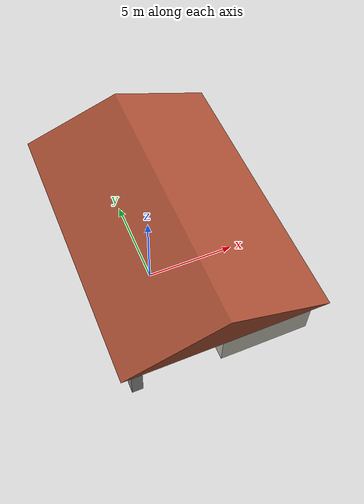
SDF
<?xml version='1.0'?>
<sdf version='1.4'>
  <model name="house_1">
    <self_collide>false</self_collide>
    <static>true</static>
    <pose>0 0 0 0 0 0</pose>

    <link name="walls">

      <visual name="walls_visual">
        <geometry>
          <mesh>
            <uri>model://house_1/meshes/walls.stl</uri>
          </mesh>
        </geometry>
        <material>
          <script>
            <uri>file://media/materials/scripts/gazebo.material</uri>
            <name>Gazebo/PaintedWall</name>
          </script>
        </material>
      </visual>

    </link>

    <link name="column">

      <visual name="column_visual">
        <geometry>
          <mesh>
            <uri>model://house_1/meshes/column.stl</uri>
          </mesh>
        </geometry>
        <material>
          <script>
            <uri>file://media/materials/scripts/gazebo.material</uri>
            <name>Gazebo/Grey</name>
          </script>
        </material>
      </visual>

    </link>

    <link name="roof">

      <visual name="roof_visual">
        <geometry>
          <mesh>
            <uri>model://house_1/meshes/roof.stl</uri>
          </mesh>
        </geometry>
        <material>
          <script>
            <uri>file://media/materials/scripts/gazebo.material</uri>
            <name>Gazebo/Bricks</name>
          </script>
        </material>
      </visual>

    </link>

  </model>
</sdf>
